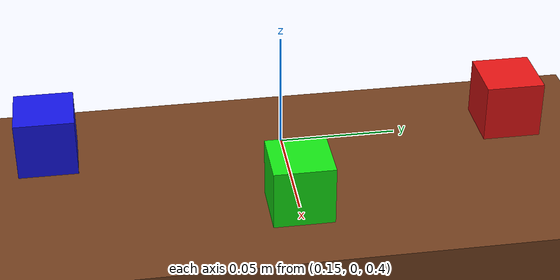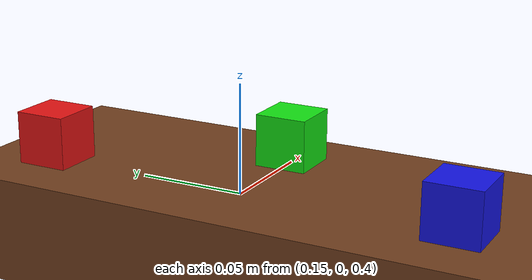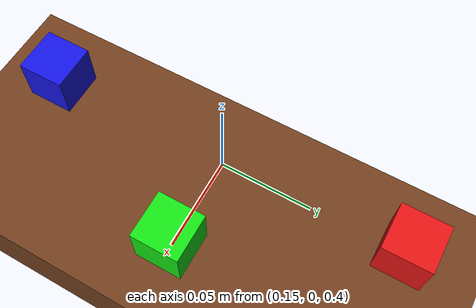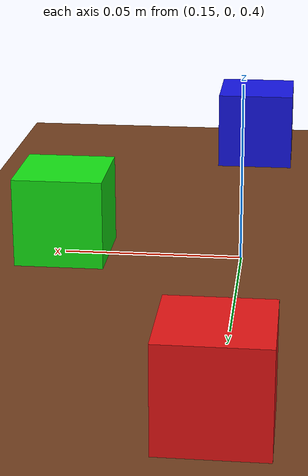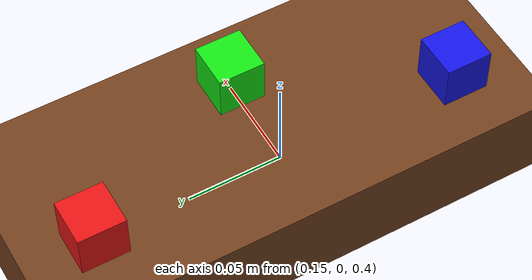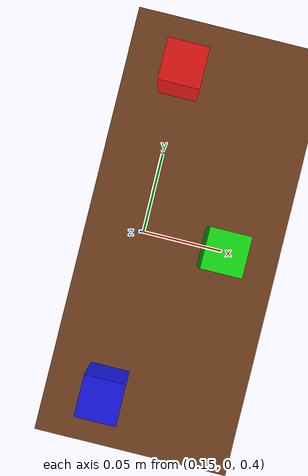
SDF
<?xml version="1.0"?>

<sdf version="1.9">
  <world name="mycobot_world">

    <physics name="physics" type="ignored">
      <max_step_size>0.002</max_step_size>
      <real_time_factor>1.0</real_time_factor>
    </physics>

    <gravity>0 0 -9.81</gravity>

    <plugin
      filename="gz-sim-physics-system"
      name="gz::sim::systems::Physics">
      <engine>
        <filename>gz-physics-dartsim-plugin</filename>
      </engine>
    </plugin>

    <plugin
      filename="gz-sim-user-commands-system"
      name="gz::sim::systems::UserCommands"/>

    <plugin
      filename="gz-sim-scene-broadcaster-system"
      name="gz::sim::systems::SceneBroadcaster"/>

    <plugin
      filename="gz-sim-sensors-system"
      name="gz::sim::systems::Sensors">
      <render_engine>ogre2</render_engine>
    </plugin>

    <light name="sun" type="directional">
      <cast_shadows>true</cast_shadows>

      <pose>
        0 0 10 0 0 0
      </pose>

      <diffuse>
        0.8 0.8 0.8 1
      </diffuse>

      <specular>
        0.2 0.2 0.2 1
      </specular>

      <direction>
        -0.5 0.1 -0.9
      </direction>
    </light>

    <model name="ground_plane">
      <static>true</static>

      <link name="ground_link">
        <collision name="ground_collision">
          <geometry>
            <plane>
              <normal>0 0 1</normal>
              <size>10 10</size>
            </plane>
          </geometry>
        </collision>

        <visual name="ground_visual">
          <geometry>
            <plane>
              <normal>0 0 1</normal>
              <size>10 10</size>
            </plane>
          </geometry>

          <material>
            <ambient>0.35 0.35 0.35 1</ambient>
            <diffuse>0.45 0.45 0.45 1</diffuse>
          </material>
        </visual>
      </link>
    </model>

    <model name="work_table">
      <static>true</static>

      <!--
        Table height: 0.40 m
        Tabletop thickness: 0.05 m
        Tabletop centre: 0.375 m
      -->
      <pose>
        0 0 0 0 0 0
      </pose>

      <link name="tabletop">
        <pose>
          0 0 0.375 0 0 0
        </pose>

        <collision name="tabletop_collision">
          <geometry>
            <box>
              <size>0.8 0.6 0.05</size>
            </box>
          </geometry>
        </collision>

        <visual name="tabletop_visual">
          <geometry>
            <box>
              <size>0.8 0.6 0.05</size>
            </box>
          </geometry>

          <material>
            <ambient>0.25 0.15 0.08 1</ambient>
            <diffuse>0.45 0.25 0.12 1</diffuse>
          </material>
        </visual>
      </link>
    </model>

        <!-- Dynamic cube used for grasping experiments -->
    <model name="pick_cube">
      <static>false</static>

      <!--
        Table surface: 0.400 m
        Cube size:      0.025 m (25 mm — small target for adaptive gripper)
        Cube centre:    0.400 + 0.0125 = 0.4125 m
      -->
      <pose>0.15 0.10 0.4125 0 0 0</pose>

      <link name="cube_link">

        <inertial>
          <mass>0.05</mass>

          <inertia>
            <ixx>0.00000521</ixx>
            <iyy>0.00000521</iyy>
            <izz>0.00000521</izz>

            <ixy>0.0</ixy>
            <ixz>0.0</ixz>
            <iyz>0.0</iyz>
          </inertia>
        </inertial>

        <collision name="cube_collision">
          <geometry>
            <box>
              <size>0.025 0.025 0.025</size>
            </box>
          </geometry>

          <surface>
            <friction>
              <ode>
                <mu>2.5</mu>
                <mu2>2.5</mu2>
              </ode>
            </friction>

            <contact>
              <ode>
                <kp>75000.0</kp>
                <kd>10.0</kd>
              </ode>
            </contact>
          </surface>
        </collision>

        <visual name="cube_visual">
          <geometry>
            <box>
              <size>0.025 0.025 0.025</size>
            </box>
          </geometry>

          <material>
            <ambient>0.8 0.05 0.05 1</ambient>
            <diffuse>0.9 0.08 0.08 1</diffuse>
            <specular>0.2 0.2 0.2 1</specular>
          </material>
        </visual>

      </link>
    </model>

    <model name="green_cube">
      <static>false</static>

      <!--
        Table surface: 0.400 m
        Cube size:      0.025 m (25 mm — small target for adaptive gripper)
        Cube centre:    0.400 + 0.0125 = 0.4125 m
      -->
      <pose>0.20 0.00 0.4125 0 0 0</pose>

      <link name="cube_link">

        <inertial>
          <mass>0.05</mass>

          <inertia>
            <ixx>0.00000521</ixx>
            <iyy>0.00000521</iyy>
            <izz>0.00000521</izz>

            <ixy>0.0</ixy>
            <ixz>0.0</ixz>
            <iyz>0.0</iyz>
          </inertia>
        </inertial>

        <collision name="cube_collision">
          <geometry>
            <box>
              <size>0.025 0.025 0.025</size>
            </box>
          </geometry>

          <surface>
            <friction>
              <ode>
                <mu>2.5</mu>
                <mu2>2.5</mu2>
              </ode>
            </friction>

            <contact>
              <ode>
                <kp>75000.0</kp>
                <kd>10.0</kd>
              </ode>
            </contact>
          </surface>
        </collision>

        <visual name="cube_visual">
          <geometry>
            <box>
              <size>0.025 0.025 0.025</size>
            </box>
          </geometry>

          <material>
            <ambient>0.05 0.8 0.05 1</ambient>
            <diffuse>0.08 0.9 0.08 1</diffuse>
            <specular>0.2 0.2 0.2 1</specular>
          </material>
        </visual>

      </link>
    </model>

    <model name="blue_cube">
      <static>false</static>

      <!--
        Table surface: 0.400 m
        Cube size:      0.025 m (25 mm — small target for adaptive gripper)
        Cube centre:    0.400 + 0.0125 = 0.4125 m
      -->
      <pose>0.15 -0.10 0.4125 0 0 0</pose>

      <link name="cube_link">

        <inertial>
          <mass>0.05</mass>

          <inertia>
            <ixx>0.00000521</ixx>
            <iyy>0.00000521</iyy>
            <izz>0.00000521</izz>

            <ixy>0.0</ixy>
            <ixz>0.0</ixz>
            <iyz>0.0</iyz>
          </inertia>
        </inertial>

        <collision name="cube_collision">
          <geometry>
            <box>
              <size>0.025 0.025 0.025</size>
            </box>
          </geometry>

          <surface>
            <friction>
              <ode>
                <mu>2.5</mu>
                <mu2>2.5</mu2>
              </ode>
            </friction>

            <contact>
              <ode>
                <kp>75000.0</kp>
                <kd>10.0</kd>
              </ode>
            </contact>
          </surface>
        </collision>

        <visual name="cube_visual">
          <geometry>
            <box>
              <size>0.025 0.025 0.025</size>
            </box>
          </geometry>

          <material>
            <ambient>0.05 0.05 0.8 1</ambient>
            <diffuse>0.08 0.08 0.9 1</diffuse>
            <specular>0.2 0.2 0.2 1</specular>
          </material>
        </visual>

      </link>
    </model>

    <!-- Fixed overhead RGB camera -->
    <model name="overhead_camera">
      <static>true</static>

      <!-- Position above the table; pitch rotates the camera downward -->
      <pose>0.30 -0.25 1.30 0 1.5708 0</pose>

      <link name="camera_link">
        <sensor name="rgb_camera" type="camera">
          <always_on>true</always_on>
          <update_rate>10</update_rate>
          <visualize>true</visualize>

          <topic>/overhead_camera/image</topic>

          <camera>
            <horizontal_fov>1.0472</horizontal_fov>

            <image>
              <width>640</width>
              <height>480</height>
              <format>R8G8B8</format>
            </image>

            <clip>
              <near>0.05</near>
              <far>5.0</far>
            </clip>
          </camera>
        </sensor>
      </link>
    </model>

  </world>
</sdf>
